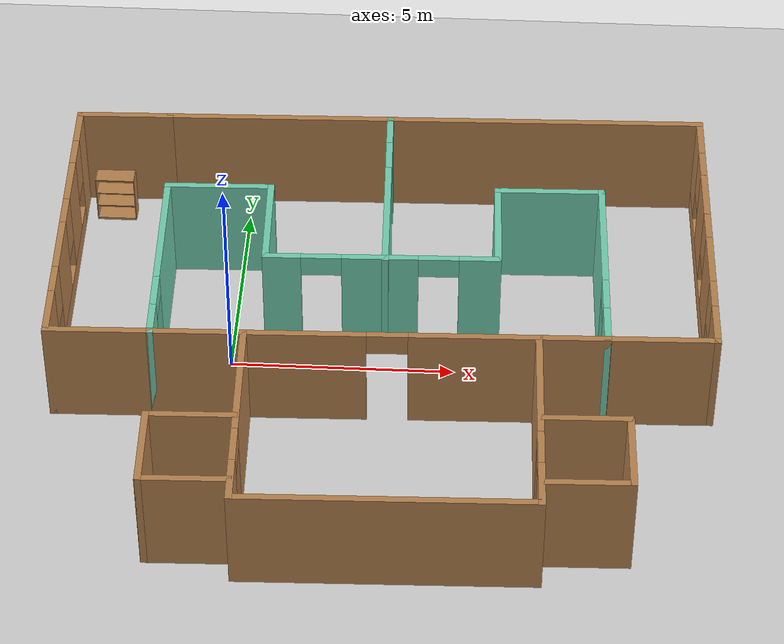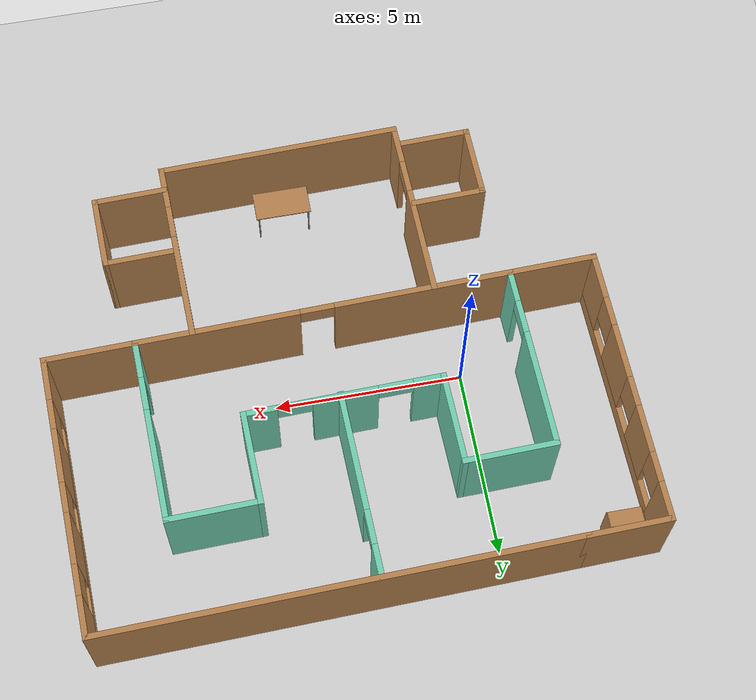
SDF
<sdf version="1.7">
 <world name="default">
  <light name="sun" type="directional">
   <pose>0 0 10 0 -0 0</pose>
   <diffuse>0.8 0.8 0.8 1</diffuse>
   <specular>0.2 0.2 0.2 1</specular>
   <attenuation>
    <range>1000</range>
    <constant>0.9</constant>
    <linear>0.01</linear>
    <quadratic>0.001</quadratic>
   </attenuation>
   <direction>-0.5 0.1 -0.9</direction>
   <spot><inner_angle>0</inner_angle><outer_angle>0</outer_angle><falloff>0</falloff></spot>
  </light>
  <model name="ground_plane">
   <static>1</static>
   <link name="link">
    <collision name="collision">
     <geometry><plane><normal>0 0 1</normal><size>100 100</size></plane></geometry>
     <surface>
      <contact><collide_bitmask>65535</collide_bitmask></contact>
      <friction><ode><mu>100</mu><mu2>50</mu2></ode></friction>
     </surface>
    </collision>
    <visual name="visual">
     <cast_shadows>0</cast_shadows>
     <geometry><plane><normal>0 0 1</normal><size>100 100</size></plane></geometry>
     <material>
      <script><uri>file://media/materials/scripts/gazebo.material</uri><name>Gazebo/Grey</name></script>
     </material>
    </visual>
   </link>
  </model>
  <gravity>0 0 -9.8</gravity>
  <magnetic_field>6e-06 2.3e-05 -4.2e-05</magnetic_field>
  <atmosphere type="adiabatic"/>
  <physics type="ode">
   <max_step_size>0.001</max_step_size>
   <real_time_factor>1</real_time_factor>
   <real_time_update_rate>1000</real_time_update_rate>
  </physics>
  <scene><ambient>0.4 0.4 0.4 1</ambient><background>0.7 0.7 0.7 1</background><shadows>1</shadows></scene>
  <spherical_coordinates>
   <surface_model>EARTH_WGS84</surface_model>
   <latitude_deg>0</latitude_deg>
   <longitude_deg>0</longitude_deg>
   <elevation>0</elevation>
   <heading_deg>0</heading_deg>
  </spherical_coordinates>
  <model name="building2">
   <pose>3.41287 -0.264081 0 0 0 -3.11426</pose>
   <link name="Wall_1">
    <pose>-4.875 -1.17504 0 0 -0 1.5708</pose>
    <visual name="Wall_1_Visual_0">
     <pose>-0.975349 0 1.25 0 -0 0</pose>
     <geometry><box><size>3.0493 0.15 2.5</size></box></geometry>
     <material>
      <script><uri>file://media/materials/scripts/gazebo.material</uri><name>Gazebo/Grey</name></script>
      <ambient>0.435294 0.796078 0.67451 1</ambient>
     </material>
     <meta><layer>0</layer></meta>
    </visual>
    <collision name="Wall_1_Collision_0">
     <geometry><box><size>3.0493 0.15 2.5</size></box></geometry>
     <pose>-0.975349 0 1.25 0 -0 0</pose>
    </collision>
    <visual name="Wall_1_Visual_1">
     <pose>1.97465 0 1.25 0 -0 0</pose>
     <geometry><box><size>1.0507 0.15 2.5</size></box></geometry>
     <material>
      <script><uri>file://media/materials/scripts/gazebo.material</uri><name>Gazebo/Grey</name></script>
      <ambient>0.435294 0.796078 0.67451 1</ambient>
     </material>
     <meta><layer>0</layer></meta>
    </visual>
    <collision name="Wall_1_Collision_1">
     <geometry><box><size>1.0507 0.15 2.5</size></box></geometry>
     <pose>1.97465 0 1.25 0 -0 0</pose>
    </collision>
    <visual name="Wall_1_Visual_2">
     <pose>0.999301 0 2.25 0 -0 0</pose>
     <geometry><box><size>0.9 0.15 0.5</size></box></geometry>
     <material>
      <script><uri>file://media/materials/scripts/gazebo.material</uri><name>Gazebo/Grey</name></script>
      <ambient>0.435294 0.796078 0.67451 1</ambient>
     </material>
     <meta><layer>0</layer></meta>
    </visual>
    <collision name="Wall_1_Collision_2">
     <geometry><box><size>0.9 0.15 0.5</size></box></geometry>
     <pose>0.999301 0 2.25 0 -0 0</pose>
    </collision>
   </link>
   <link name="Wall_10">
    <pose>0.05 -1.25004 0 0 -0 0</pose>
    <visual name="Wall_10_Visual_0">
     <pose>-2.18114 0 1.25 0 -0 0</pose>
     <geometry><box><size>0.937717 0.15 2.5</size></box></geometry>
     <material>
      <script><uri>file://media/materials/scripts/gazebo.material</uri><name>Gazebo/Grey</name></script>
      <ambient>0.435294 0.796078 0.67451 1</ambient>
     </material>
     <meta><layer>0</layer></meta>
    </visual>
    <collision name="Wall_10_Collision_0">
     <geometry><box><size>0.937717 0.15 2.5</size></box></geometry>
     <pose>-2.18114 0 1.25 0 -0 0</pose>
    </collision>
    <visual name="Wall_10_Visual_1">
     <pose>0.039331 0 1.25 0 -0 0</pose>
     <geometry><box><size>1.70323 0.15 2.5</size></box></geometry>
     <material>
      <script><uri>file://media/materials/scripts/gazebo.material</uri><name>Gazebo/Grey</name></script>
      <ambient>0.435294 0.796078 0.67451 1</ambient>
     </material>
     <meta><layer>0</layer></meta>
    </visual>
    <collision name="Wall_10_Collision_1">
     <geometry><box><size>1.70323 0.15 2.5</size></box></geometry>
     <pose>0.039331 0 1.25 0 -0 0</pose>
    </collision>
    <visual name="Wall_10_Visual_2">
     <pose>2.22047 0 1.25 0 -0 0</pose>
     <geometry><box><size>0.859054 0.15 2.5</size></box></geometry>
     <material>
      <script><uri>file://media/materials/scripts/gazebo.material</uri><name>Gazebo/Grey</name></script>
      <ambient>0.435294 0.796078 0.67451 1</ambient>
     </material>
     <meta><layer>0</layer></meta>
    </visual>
    <collision name="Wall_10_Collision_2">
     <geometry><box><size>0.859054 0.15 2.5</size></box></geometry>
     <pose>2.22047 0 1.25 0 -0 0</pose>
    </collision>
    <visual name="Wall_10_Visual_3">
     <pose>-1.26228 0 2.25 0 -0 0</pose>
     <geometry><box><size>0.9 0.15 0.5</size></box></geometry>
     <material>
      <script><uri>file://media/materials/scripts/gazebo.material</uri><name>Gazebo/Grey</name></script>
      <ambient>0.435294 0.796078 0.67451 1</ambient>
     </material>
     <meta><layer>0</layer></meta>
    </visual>
    <collision name="Wall_10_Collision_3">
     <geometry><box><size>0.9 0.15 0.5</size></box></geometry>
     <pose>-1.26228 0 2.25 0 -0 0</pose>
    </collision>
    <visual name="Wall_10_Visual_4">
     <pose>1.34095 0 2.25 0 -0 0</pose>
     <geometry><box><size>0.9 0.15 0.5</size></box></geometry>
     <material>
      <script><uri>file://media/materials/scripts/gazebo.material</uri><name>Gazebo/Grey</name></script>
      <ambient>0.435294 0.796078 0.67451 1</ambient>
     </material>
     <meta><layer>0</layer></meta>
    </visual>
    <collision name="Wall_10_Collision_4">
     <geometry><box><size>0.9 0.15 0.5</size></box></geometry>
     <pose>1.34095 0 2.25 0 -0 0</pose>
    </collision>
   </link>
   <link name="Wall_12">
    <collision name="Wall_12_Collision">
     <geometry><box><size>2.5 0.15 2.5</size></box></geometry>
     <pose>0 0 1.25 0 -0 0</pose>
    </collision>
    <visual name="Wall_12_Visual">
     <pose>0 0 1.25 0 -0 0</pose>
     <geometry><box><size>2.5 0.15 2.5</size></box></geometry>
     <material>
      <script><uri>file://media/materials/scripts/gazebo.material</uri><name>Gazebo/Wood</name></script>
      <ambient>1 1 1 1</ambient>
     </material>
     <meta><layer>0</layer></meta>
    </visual>
    <pose>-6.05 1.24996 0 0 -0 3.14159</pose>
   </link>
   <link name="Wall_13">
    <pose>-7.225 -2.42504 0 0 -0 -1.5708</pose>
    <visual name="Wall_13_Visual_0">
     <pose>-3.1596 0 1.25 0 -0 0</pose>
     <geometry><box><size>1.18081 0.15 2.5</size></box></geometry>
     <material>
      <script><uri>file://media/materials/scripts/gazebo.material</uri><name>Gazebo/Wood</name></script>
      <ambient>1 1 1 1</ambient>
     </material>
     <meta><layer>0</layer></meta>
    </visual>
    <collision name="Wall_13_Collision_0">
     <geometry><box><size>1.18081 0.15 2.5</size></box></geometry>
     <pose>-3.1596 0 1.25 0 -0 0</pose>
    </collision>
    <visual name="Wall_13_Visual_1">
     <pose>0.590402 0 0.25 0 -0 0</pose>
     <geometry><box><size>6.31919 0.15 0.5</size></box></geometry>
     <material>
      <script><uri>file://media/materials/scripts/gazebo.material</uri><name>Gazebo/Wood</name></script>
      <ambient>1 1 1 1</ambient>
     </material>
     <meta><layer>0</layer></meta>
    </visual>
    <collision name="Wall_13_Collision_1">
     <geometry><box><size>6.31919 0.15 0.5</size></box></geometry>
     <pose>0.590402 0 0.25 0 -0 0</pose>
    </collision>
    <visual name="Wall_13_Visual_2">
     <pose>-1.04347 0 1.5 0 -0 0</pose>
     <geometry><box><size>1.45144 0.15 2</size></box></geometry>
     <material>
      <script><uri>file://media/materials/scripts/gazebo.material</uri><name>Gazebo/Wood</name></script>
      <ambient>1 1 1 1</ambient>
     </material>
     <meta><layer>0</layer></meta>
    </visual>
    <collision name="Wall_13_Collision_2">
     <geometry><box><size>1.45144 0.15 2</size></box></geometry>
     <pose>-1.04347 0 1.5 0 -0 0</pose>
    </collision>
    <visual name="Wall_13_Visual_3">
     <pose>1.1552 0 1.5 0 -0 0</pose>
     <geometry><box><size>1.3459 0.15 2</size></box></geometry>
     <material>
      <script><uri>file://media/materials/scripts/gazebo.material</uri><name>Gazebo/Wood</name></script>
      <ambient>1 1 1 1</ambient>
     </material>
     <meta><layer>0</layer></meta>
    </visual>
    <collision name="Wall_13_Collision_3">
     <geometry><box><size>1.3459 0.15 2</size></box></geometry>
     <pose>1.1552 0 1.5 0 -0 0</pose>
    </collision>
    <visual name="Wall_13_Visual_4">
     <pose>3.18907 0 1.5 0 -0 0</pose>
     <geometry><box><size>1.12185 0.15 2</size></box></geometry>
     <material>
      <script><uri>file://media/materials/scripts/gazebo.material</uri><name>Gazebo/Wood</name></script>
      <ambient>1 1 1 1</ambient>
     </material>
     <meta><layer>0</layer></meta>
    </visual>
    <collision name="Wall_13_Collision_4">
     <geometry><box><size>1.12185 0.15 2</size></box></geometry>
     <pose>3.18907 0 1.5 0 -0 0</pose>
    </collision>
    <visual name="Wall_13_Visual_5">
     <pose>-2.1692 0 1.9 0 -0 0</pose>
     <geometry><box><size>0.8 0.15 1.2</size></box></geometry>
     <material>
      <script><uri>file://media/materials/scripts/gazebo.material</uri><name>Gazebo/Wood</name></script>
      <ambient>1 1 1 1</ambient>
     </material>
     <meta><layer>0</layer></meta>
    </visual>
    <collision name="Wall_13_Collision_5">
     <geometry><box><size>0.8 0.15 1.2</size></box></geometry>
     <pose>-2.1692 0 1.9 0 -0 0</pose>
    </collision>
    <visual name="Wall_13_Visual_6">
     <pose>0.082246 0 1.9 0 -0 0</pose>
     <geometry><box><size>0.8 0.15 1.2</size></box></geometry>
     <material>
      <script><uri>file://media/materials/scripts/gazebo.material</uri><name>Gazebo/Wood</name></script>
      <ambient>1 1 1 1</ambient>
     </material>
     <meta><layer>0</layer></meta>
    </visual>
    <collision name="Wall_13_Collision_6">
     <geometry><box><size>0.8 0.15 1.2</size></box></geometry>
     <pose>0.082246 0 1.9 0 -0 0</pose>
    </collision>
    <visual name="Wall_13_Visual_7">
     <pose>2.22815 0 1.9 0 -0 0</pose>
     <geometry><box><size>0.8 0.15 1.2</size></box></geometry>
     <material>
      <script><uri>file://media/materials/scripts/gazebo.material</uri><name>Gazebo/Wood</name></script>
      <ambient>1 1 1 1</ambient>
     </material>
     <meta><layer>0</layer></meta>
    </visual>
    <collision name="Wall_13_Collision_7">
     <geometry><box><size>0.8 0.15 1.2</size></box></geometry>
     <pose>2.22815 0 1.9 0 -0 0</pose>
    </collision>
   </link>
   <link name="Wall_14">
    <collision name="Wall_14_Collision">
     <geometry><box><size>12.5 0.15 2.5</size></box></geometry>
     <pose>0 0 1.25 0 -0 0</pose>
    </collision>
    <visual name="Wall_14_Visual">
     <pose>0 0 1.25 0 -0 0</pose>
     <geometry><box><size>12.5 0.15 2.5</size></box></geometry>
     <material>
      <script><uri>file://media/materials/scripts/gazebo.material</uri><name>Gazebo/Wood</name></script>
      <ambient>1 1 1 1</ambient>
     </material>
     <meta><layer>0</layer></meta>
    </visual>
    <pose>-1.05 -6.10004 0 0 -0 0</pose>
   </link>
   <link name="Wall_18">
    <pose>-0.026306 -3.64586 0 0 -0 -1.5708</pose>
    <visual name="Wall_18_Visual_0">
     <pose>-0.900973 0 1.25 0 -0 0</pose>
     <geometry><box><size>3.19805 0.15 2.5</size></box></geometry>
     <material>
      <script><uri>file://media/materials/scripts/gazebo.material</uri><name>Gazebo/Grey</name></script>
      <ambient>0.435294 0.796078 0.67451 1</ambient>
     </material>
     <meta><layer>0</layer></meta>
    </visual>
    <collision name="Wall_18_Collision_0">
     <geometry><box><size>3.19805 0.15 2.5</size></box></geometry>
     <pose>-0.900973 0 1.25 0 -0 0</pose>
    </collision>
    <visual name="Wall_18_Visual_1">
     <pose>2.04903 0 1.25 0 -0 0</pose>
     <geometry><box><size>0.901947 0.15 2.5</size></box></geometry>
     <material>
      <script><uri>file://media/materials/scripts/gazebo.material</uri><name>Gazebo/Grey</name></script>
      <ambient>0.435294 0.796078 0.67451 1</ambient>
     </material>
     <meta><layer>0</layer></meta>
    </visual>
    <collision name="Wall_18_Collision_1">
     <geometry><box><size>0.901947 0.15 2.5</size></box></geometry>
     <pose>2.04903 0 1.25 0 -0 0</pose>
    </collision>
    <visual name="Wall_18_Visual_2">
     <pose>1.14805 0 2.25 0 -0 0</pose>
     <geometry><box><size>0.9 0.15 0.5</size></box></geometry>
     <material>
      <script><uri>file://media/materials/scripts/gazebo.material</uri><name>Gazebo/Grey</name></script>
      <ambient>0.435294 0.796078 0.67451 1</ambient>
     </material>
     <meta><layer>0</layer></meta>
    </visual>
    <collision name="Wall_18_Collision_2">
     <geometry><box><size>0.9 0.15 0.5</size></box></geometry>
     <pose>1.14805 0 2.25 0 -0 0</pose>
    </collision>
   </link>
   <link name="Wall_21">
    <collision name="Wall_21_Collision">
     <geometry><box><size>2.25 0.15 2.5</size></box></geometry>
     <pose>0 0 1.25 0 -0 0</pose>
    </collision>
    <visual name="Wall_21_Visual">
     <pose>0 0 1.25 0 -0 0</pose>
     <geometry><box><size>2.25 0.15 2.5</size></box></geometry>
     <material>
      <script><uri>file://media/materials/scripts/gazebo.material</uri><name>Gazebo/Wood</name></script>
      <ambient>1 1 1 1</ambient>
     </material>
     <meta><layer>0</layer></meta>
    </visual>
    <pose>6.175 -6.10004 0 0 -0 0</pose>
   </link>
   <link name="Wall_22">
    <pose>7.225 -2.42504 0 0 -0 1.5708</pose>
    <visual name="Wall_22_Visual_0">
     <pose>-3.22425 0 1.25 0 -0 0</pose>
     <geometry><box><size>1.05149 0.15 2.5</size></box></geometry>
     <material>
      <script><uri>file://media/materials/scripts/gazebo.material</uri><name>Gazebo/Wood</name></script>
      <ambient>1 1 1 1</ambient>
     </material>
     <meta><layer>0</layer></meta>
    </visual>
    <collision name="Wall_22_Collision_0">
     <geometry><box><size>1.05149 0.15 2.5</size></box></geometry>
     <pose>-3.22425 0 1.25 0 -0 0</pose>
    </collision>
    <visual name="Wall_22_Visual_1">
     <pose>0.525746 0 0.25 0 -0 0</pose>
     <geometry><box><size>6.44851 0.15 0.5</size></box></geometry>
     <material>
      <script><uri>file://media/materials/scripts/gazebo.material</uri><name>Gazebo/Wood</name></script>
      <ambient>1 1 1 1</ambient>
     </material>
     <meta><layer>0</layer></meta>
    </visual>
    <collision name="Wall_22_Collision_1">
     <geometry><box><size>6.44851 0.15 0.5</size></box></geometry>
     <pose>0.525746 0 0.25 0 -0 0</pose>
    </collision>
    <visual name="Wall_22_Visual_2">
     <pose>-1.26073 0 1.5 0 -0 0</pose>
     <geometry><box><size>1.27555 0.15 2</size></box></geometry>
     <material>
      <script><uri>file://media/materials/scripts/gazebo.material</uri><name>Gazebo/Wood</name></script>
      <ambient>1 1 1 1</ambient>
     </material>
     <meta><layer>0</layer></meta>
    </visual>
    <collision name="Wall_22_Collision_2">
     <geometry><box><size>1.27555 0.15 2</size></box></geometry>
     <pose>-1.26073 0 1.5 0 -0 0</pose>
    </collision>
    <visual name="Wall_22_Visual_3">
     <pose>0.920349 0 1.5 0 -0 0</pose>
     <geometry><box><size>1.48662 0.15 2</size></box></geometry>
     <material>
      <script><uri>file://media/materials/scripts/gazebo.material</uri><name>Gazebo/Wood</name></script>
      <ambient>1 1 1 1</ambient>
     </material>
     <meta><layer>0</layer></meta>
    </visual>
    <collision name="Wall_22_Collision_3">
     <geometry><box><size>1.48662 0.15 2</size></box></geometry>
     <pose>0.920349 0 1.5 0 -0 0</pose>
    </collision>
    <visual name="Wall_22_Visual_4">
     <pose>3.10683 0 1.5 0 -0 0</pose>
     <geometry><box><size>1.28634 0.15 2</size></box></geometry>
     <material>
      <script><uri>file://media/materials/scripts/gazebo.material</uri><name>Gazebo/Wood</name></script>
      <ambient>1 1 1 1</ambient>
     </material>
     <meta><layer>0</layer></meta>
    </visual>
    <collision name="Wall_22_Collision_4">
     <geometry><box><size>1.28634 0.15 2</size></box></geometry>
     <pose>3.10683 0 1.5 0 -0 0</pose>
    </collision>
    <visual name="Wall_22_Visual_5">
     <pose>-2.29851 0 1.9 0 -0 0</pose>
     <geometry><box><size>0.8 0.15 1.2</size></box></geometry>
     <material>
      <script><uri>file://media/materials/scripts/gazebo.material</uri><name>Gazebo/Wood</name></script>
      <ambient>1 1 1 1</ambient>
     </material>
     <meta><layer>0</layer></meta>
    </visual>
    <collision name="Wall_22_Collision_5">
     <geometry><box><size>0.8 0.15 1.2</size></box></geometry>
     <pose>-2.29851 0 1.9 0 -0 0</pose>
    </collision>
    <visual name="Wall_22_Visual_6">
     <pose>-0.222961 0 1.9 0 -0 0</pose>
     <geometry><box><size>0.8 0.15 1.2</size></box></geometry>
     <material>
      <script><uri>file://media/materials/scripts/gazebo.material</uri><name>Gazebo/Wood</name></script>
      <ambient>1 1 1 1</ambient>
     </material>
     <meta><layer>0</layer></meta>
    </visual>
    <collision name="Wall_22_Collision_6">
     <geometry><box><size>0.8 0.15 1.2</size></box></geometry>
     <pose>-0.222961 0 1.9 0 -0 0</pose>
    </collision>
    <visual name="Wall_22_Visual_7">
     <pose>2.06366 0 1.9 0 -0 0</pose>
     <geometry><box><size>0.8 0.15 1.2</size></box></geometry>
     <material>
      <script><uri>file://media/materials/scripts/gazebo.material</uri><name>Gazebo/Wood</name></script>
      <ambient>1 1 1 1</ambient>
     </material>
     <meta><layer>0</layer></meta>
    </visual>
    <collision name="Wall_22_Collision_7">
     <geometry><box><size>0.8 0.15 1.2</size></box></geometry>
     <pose>2.06366 0 1.9 0 -0 0</pose>
    </collision>
   </link>
   <link name="Wall_23">
    <collision name="Wall_23_Collision">
     <geometry><box><size>2.4 0.15 2.5</size></box></geometry>
     <pose>0 0 1.25 0 -0 0</pose>
    </collision>
    <visual name="Wall_23_Visual">
     <pose>0 0 1.25 0 -0 0</pose>
     <geometry><box><size>2.4 0.15 2.5</size></box></geometry>
     <material>
      <script><uri>file://media/materials/scripts/gazebo.material</uri><name>Gazebo/Wood</name></script>
      <ambient>1 1 1 1</ambient>
     </material>
     <meta><layer>0</layer></meta>
    </visual>
    <pose>6.1 1.24996 0 0 -0 -3.14159</pose>
   </link>
   <link name="Wall_26">
    <pose>-3.3958 3.67504 0 0 -0 1.5708</pose>
    <visual name="Wall_26_Visual_0">
     <pose>-1.04628 0 1.25 0 -0 0</pose>
     <geometry><box><size>2.90745 0.15 2.5</size></box></geometry>
     <material>
      <script><uri>file://media/materials/scripts/gazebo.material</uri><name>Gazebo/Wood</name></script>
      <ambient>1 1 1 1</ambient>
     </material>
     <meta><layer>0</layer></meta>
    </visual>
    <collision name="Wall_26_Collision_0">
     <geometry><box><size>2.90745 0.15 2.5</size></box></geometry>
     <pose>-1.04628 0 1.25 0 -0 0</pose>
    </collision>
    <visual name="Wall_26_Visual_1">
     <pose>1.90372 0 1.25 0 -0 0</pose>
     <geometry><box><size>1.19255 0.15 2.5</size></box></geometry>
     <material>
      <script><uri>file://media/materials/scripts/gazebo.material</uri><name>Gazebo/Wood</name></script>
      <ambient>1 1 1 1</ambient>
     </material>
     <meta><layer>0</layer></meta>
    </visual>
    <collision name="Wall_26_Collision_1">
     <geometry><box><size>1.19255 0.15 2.5</size></box></geometry>
     <pose>1.90372 0 1.25 0 -0 0</pose>
    </collision>
    <visual name="Wall_26_Visual_2">
     <pose>0.857448 0 2.25 0 -0 0</pose>
     <geometry><box><size>0.9 0.15 0.5</size></box></geometry>
     <material>
      <script><uri>file://media/materials/scripts/gazebo.material</uri><name>Gazebo/Wood</name></script>
      <ambient>1 1 1 1</ambient>
     </material>
     <meta><layer>0</layer></meta>
    </visual>
    <collision name="Wall_26_Collision_2">
     <geometry><box><size>0.9 0.15 0.5</size></box></geometry>
     <pose>0.857448 0 2.25 0 -0 0</pose>
    </collision>
   </link>
   <link name="Wall_27">
    <collision name="Wall_27_Collision">
     <geometry><box><size>6.5 0.15 2.5</size></box></geometry>
     <pose>0 0 1.25 0 -0 0</pose>
    </collision>
    <visual name="Wall_27_Visual">
     <pose>0 0 1.25 0 -0 0</pose>
     <geometry><box><size>6.5 0.15 2.5</size></box></geometry>
     <material>
      <script><uri>file://media/materials/scripts/gazebo.material</uri><name>Gazebo/Wood</name></script>
      <ambient>1 1 1 1</ambient>
     </material>
     <meta><layer>0</layer></meta>
    </visual>
    <pose>-0.220795 6.10004 0 0 -0 0</pose>
   </link>
   <link name="Wall_28">
    <pose>2.9542 3.67504 0 0 -0 -1.5708</pose>
    <visual name="Wall_28_Visual_0">
     <pose>-1.94362 0 1.25 0 -0 0</pose>
     <geometry><box><size>1.11275 0.15 2.5</size></box></geometry>
     <material>
      <script><uri>file://media/materials/scripts/gazebo.material</uri><name>Gazebo/Wood</name></script>
      <ambient>1 1 1 1</ambient>
     </material>
     <meta><layer>0</layer></meta>
    </visual>
    <collision name="Wall_28_Collision_0">
     <geometry><box><size>1.11275 0.15 2.5</size></box></geometry>
     <pose>-1.94362 0 1.25 0 -0 0</pose>
    </collision>
    <visual name="Wall_28_Visual_1">
     <pose>1.00638 0 1.25 0 -0 0</pose>
     <geometry><box><size>2.98725 0.15 2.5</size></box></geometry>
     <material>
      <script><uri>file://media/materials/scripts/gazebo.material</uri><name>Gazebo/Wood</name></script>
      <ambient>1 1 1 1</ambient>
     </material>
     <meta><layer>0</layer></meta>
    </visual>
    <collision name="Wall_28_Collision_1">
     <geometry><box><size>2.98725 0.15 2.5</size></box></geometry>
     <pose>1.00638 0 1.25 0 -0 0</pose>
    </collision>
    <visual name="Wall_28_Visual_2">
     <pose>-0.937249 0 2.25 0 -0 0</pose>
     <geometry><box><size>0.9 0.15 0.5</size></box></geometry>
     <material>
      <script><uri>file://media/materials/scripts/gazebo.material</uri><name>Gazebo/Wood</name></script>
      <ambient>1 1 1 1</ambient>
     </material>
     <meta><layer>0</layer></meta>
    </visual>
    <collision name="Wall_28_Collision_2">
     <geometry><box><size>0.9 0.15 0.5</size></box></geometry>
     <pose>-0.937249 0 2.25 0 -0 0</pose>
    </collision>
   </link>
   <link name="Wall_3">
    <pose>0.05 1.24996 0 0 -0 0</pose>
    <visual name="Wall_3_Visual_0">
     <pose>-2.81701 0 1.25 0 -0 0</pose>
     <geometry><box><size>4.36598 0.15 2.5</size></box></geometry>
     <material>
      <script><uri>file://media/materials/scripts/gazebo.material</uri><name>Gazebo/Wood</name></script>
      <ambient>1 1 1 1</ambient>
     </material>
     <meta><layer>0</layer></meta>
    </visual>
    <collision name="Wall_3_Collision_0">
     <geometry><box><size>4.36598 0.15 2.5</size></box></geometry>
     <pose>-2.81701 0 1.25 0 -0 0</pose>
    </collision>
    <visual name="Wall_3_Visual_1">
     <pose>2.63299 0 1.25 0 -0 0</pose>
     <geometry><box><size>4.73402 0.15 2.5</size></box></geometry>
     <material>
      <script><uri>file://media/materials/scripts/gazebo.material</uri><name>Gazebo/Wood</name></script>
      <ambient>1 1 1 1</ambient>
     </material>
     <meta><layer>0</layer></meta>
    </visual>
    <collision name="Wall_3_Collision_1">
     <geometry><box><size>4.73402 0.15 2.5</size></box></geometry>
     <pose>2.63299 0 1.25 0 -0 0</pose>
    </collision>
    <visual name="Wall_3_Visual_2">
     <pose>-0.184023 0 2.25 0 -0 0</pose>
     <geometry><box><size>0.9 0.15 0.5</size></box></geometry>
     <material>
      <script><uri>file://media/materials/scripts/gazebo.material</uri><name>Gazebo/Wood</name></script>
      <ambient>1 1 1 1</ambient>
     </material>
     <meta><layer>0</layer></meta>
    </visual>
    <collision name="Wall_3_Collision_2">
     <geometry><box><size>0.9 0.15 0.5</size></box></geometry>
     <pose>-0.184023 0 2.25 0 -0 0</pose>
    </collision>
   </link>
   <link name="Wall_32">
    <collision name="Wall_32_Collision">
     <geometry><box><size>2 0.15 2.5</size></box></geometry>
     <pose>0 0 1.25 0 -0 0</pose>
    </collision>
    <visual name="Wall_32_Visual">
     <pose>0 0 1.25 0 -0 0</pose>
     <geometry><box><size>2 0.15 2.5</size></box></geometry>
     <material>
      <script><uri>file://media/materials/scripts/gazebo.material</uri><name>Gazebo/Wood</name></script>
      <ambient>1 1 1 1</ambient>
     </material>
     <meta><layer>0</layer></meta>
    </visual>
    <pose>-4.34814 5.51854 0 0 -0 3.14159</pose>
   </link>
   <link name="Wall_33">
    <collision name="Wall_33_Collision">
     <geometry><box><size>2 0.15 2.5</size></box></geometry>
     <pose>0 0 1.25 0 -0 0</pose>
    </collision>
    <visual name="Wall_33_Visual">
     <pose>0 0 1.25 0 -0 0</pose>
     <geometry><box><size>2 0.15 2.5</size></box></geometry>
     <material>
      <script><uri>file://media/materials/scripts/gazebo.material</uri><name>Gazebo/Wood</name></script>
      <ambient>1 1 1 1</ambient>
     </material>
     <meta><layer>0</layer></meta>
    </visual>
    <pose>-5.27314 4.59354 0 0 -0 -1.5708</pose>
   </link>
   <link name="Wall_34">
    <collision name="Wall_34_Collision">
     <geometry><box><size>2 0.15 2.5</size></box></geometry>
     <pose>0 0 1.25 0 -0 0</pose>
    </collision>
    <visual name="Wall_34_Visual">
     <pose>0 0 1.25 0 -0 0</pose>
     <geometry><box><size>2 0.15 2.5</size></box></geometry>
     <material>
      <script><uri>file://media/materials/scripts/gazebo.material</uri><name>Gazebo/Wood</name></script>
      <ambient>1 1 1 1</ambient>
     </material>
     <meta><layer>0</layer></meta>
    </visual>
    <pose>-4.34814 3.66854 0 0 -0 0</pose>
   </link>
   <link name="Wall_4">
    <pose>4.975 -1.17504 0 0 -0 -1.5708</pose>
    <visual name="Wall_4_Visual_0">
     <pose>-2.04115 0 1.25 0 -0 0</pose>
     <geometry><box><size>0.917698 0.15 2.5</size></box></geometry>
     <material>
      <script><uri>file://media/materials/scripts/gazebo.material</uri><name>Gazebo/Grey</name></script>
      <ambient>0.435294 0.796078 0.67451 1</ambient>
     </material>
     <meta><layer>0</layer></meta>
    </visual>
    <collision name="Wall_4_Collision_0">
     <geometry><box><size>0.917698 0.15 2.5</size></box></geometry>
     <pose>-2.04115 0 1.25 0 -0 0</pose>
    </collision>
    <visual name="Wall_4_Visual_1">
     <pose>0.908849 0 1.25 0 -0 0</pose>
     <geometry><box><size>3.1823 0.15 2.5</size></box></geometry>
     <material>
      <script><uri>file://media/materials/scripts/gazebo.material</uri><name>Gazebo/Grey</name></script>
      <ambient>0.435294 0.796078 0.67451 1</ambient>
     </material>
     <meta><layer>0</layer></meta>
    </visual>
    <collision name="Wall_4_Collision_1">
     <geometry><box><size>3.1823 0.15 2.5</size></box></geometry>
     <pose>0.908849 0 1.25 0 -0 0</pose>
    </collision>
    <visual name="Wall_4_Visual_2">
     <pose>-1.1323 0 2.25 0 -0 0</pose>
     <geometry><box><size>0.9 0.15 0.5</size></box></geometry>
     <material>
      <script><uri>file://media/materials/scripts/gazebo.material</uri><name>Gazebo/Grey</name></script>
      <ambient>0.435294 0.796078 0.67451 1</ambient>
     </material>
     <meta><layer>0</layer></meta>
    </visual>
    <collision name="Wall_4_Collision_2">
     <geometry><box><size>0.9 0.15 0.5</size></box></geometry>
     <pose>-1.1323 0 2.25 0 -0 0</pose>
    </collision>
   </link>
   <link name="Wall_44">
    <collision name="Wall_44_Collision">
     <geometry><box><size>2 0.15 2.5</size></box></geometry>
     <pose>0 0 1.25 0 -0 0</pose>
    </collision>
    <visual name="Wall_44_Visual">
     <pose>0 0 1.25 0 -0 0</pose>
     <geometry><box><size>2 0.15 2.5</size></box></geometry>
     <material>
      <script><uri>file://media/materials/scripts/gazebo.material</uri><name>Gazebo/Wood</name></script>
      <ambient>1 1 1 1</ambient>
     </material>
     <meta><layer>0</layer></meta>
    </visual>
    <pose>3.91809 5.61911 0 0 -0 0</pose>
   </link>
   <link name="Wall_45">
    <collision name="Wall_45_Collision">
     <geometry><box><size>2 0.15 2.5</size></box></geometry>
     <pose>0 0 1.25 0 -0 0</pose>
    </collision>
    <visual name="Wall_45_Visual">
     <pose>0 0 1.25 0 -0 0</pose>
     <geometry><box><size>2 0.15 2.5</size></box></geometry>
     <material>
      <script><uri>file://media/materials/scripts/gazebo.material</uri><name>Gazebo/Wood</name></script>
      <ambient>1 1 1 1</ambient>
     </material>
     <meta><layer>0</layer></meta>
    </visual>
    <pose>4.84309 4.69411 0 0 -0 -1.5708</pose>
   </link>
   <link name="Wall_46">
    <collision name="Wall_46_Collision">
     <geometry><box><size>2 0.15 2.5</size></box></geometry>
     <pose>0 0 1.25 0 -0 0</pose>
    </collision>
    <visual name="Wall_46_Visual">
     <pose>0 0 1.25 0 -0 0</pose>
     <geometry><box><size>2 0.15 2.5</size></box></geometry>
     <material>
      <script><uri>file://media/materials/scripts/gazebo.material</uri><name>Gazebo/Wood</name></script>
      <ambient>1 1 1 1</ambient>
     </material>
     <meta><layer>0</layer></meta>
    </visual>
    <pose>3.91809 3.76911 0 0 -0 3.14159</pose>
   </link>
   <link name="Wall_5">
    <collision name="Wall_5_Collision">
     <geometry><box><size>2.5 0.15 2.5</size></box></geometry>
     <pose>0 0 1.25 0 -0 0</pose>
    </collision>
    <visual name="Wall_5_Visual">
     <pose>0 0 1.25 0 -0 0</pose>
     <geometry><box><size>2.5 0.15 2.5</size></box></geometry>
     <material>
      <script><uri>file://media/materials/scripts/gazebo.material</uri><name>Gazebo/Grey</name></script>
      <ambient>0.435294 0.796078 0.67451 1</ambient>
     </material>
     <meta><layer>0</layer></meta>
    </visual>
    <pose>3.8 -3.60004 0 0 -0 3.14159</pose>
   </link>
   <link name="Wall_6">
    <collision name="Wall_6_Collision">
     <geometry><box><size>2.5 0.15 2.5</size></box></geometry>
     <pose>0 0 1.25 0 -0 0</pose>
    </collision>
    <visual name="Wall_6_Visual">
     <pose>0 0 1.25 0 -0 0</pose>
     <geometry><box><size>2.5 0.15 2.5</size></box></geometry>
     <material>
      <script><uri>file://media/materials/scripts/gazebo.material</uri><name>Gazebo/Grey</name></script>
      <ambient>0.435294 0.796078 0.67451 1</ambient>
     </material>
     <meta><layer>0</layer></meta>
    </visual>
    <pose>2.625 -2.42504 0 0 -0 1.5708</pose>
   </link>
   <link name="Wall_8">
    <collision name="Wall_8_Collision">
     <geometry><box><size>2.5 0.15 2.5</size></box></geometry>
     <pose>0 0 1.25 0 -0 0</pose>
    </collision>
    <visual name="Wall_8_Visual">
     <pose>0 0 1.25 0 -0 0</pose>
     <geometry><box><size>2.5 0.15 2.5</size></box></geometry>
     <material>
      <script><uri>file://media/materials/scripts/gazebo.material</uri><name>Gazebo/Grey</name></script>
      <ambient>0.435294 0.796078 0.67451 1</ambient>
     </material>
     <meta><layer>0</layer></meta>
    </visual>
    <pose>-3.7 -3.60004 0 0 -0 0</pose>
   </link>
   <link name="Wall_9">
    <collision name="Wall_9_Collision">
     <geometry><box><size>2.5 0.15 2.5</size></box></geometry>
     <pose>0 0 1.25 0 -0 0</pose>
    </collision>
    <visual name="Wall_9_Visual">
     <pose>0 0 1.25 0 -0 0</pose>
     <geometry><box><size>2.5 0.15 2.5</size></box></geometry>
     <material>
      <script><uri>file://media/materials/scripts/gazebo.material</uri><name>Gazebo/Grey</name></script>
      <ambient>0.435294 0.796078 0.67451 1</ambient>
     </material>
     <meta><layer>0</layer></meta>
    </visual>
    <pose>-2.525 -2.42504 0 0 -0 1.5708</pose>
   </link>
   <static>1</static>
  </model>
  <model name="bookshelf">
   <static>1</static>
   <link name="link">
    <inertial><mass>1</mass></inertial>
    <collision name="back">
     <pose>0 0.005 0.6 0 -0 0</pose>
     <geometry><box><size>0.9 0.01 1.2</size></box></geometry>
    </collision>
    <visual name="visual1">
     <pose>0 0.005 0.6 0 -0 0</pose>
     <geometry><box><size>0.9 0.01 1.2</size></box></geometry>
     <material>
      <script><uri>file://media/materials/scripts/gazebo.material</uri><name>Gazebo/Wood</name></script>
     </material>
    </visual>
    <collision name="left_side">
     <pose>0.45 -0.195 0.6 0 -0 0</pose>
     <geometry><box><size>0.02 0.4 1.2</size></box></geometry>
    </collision>
    <visual name="visual2">
     <pose>0.45 -0.195 0.6 0 -0 0</pose>
     <geometry><box><size>0.02 0.4 1.2</size></box></geometry>
     <material>
      <script><uri>file://media/materials/scripts/gazebo.material</uri><name>Gazebo/Wood</name></script>
     </material>
    </visual>
    <collision name="right_side">
     <pose>-0.45 -0.195 0.6 0 -0 0</pose>
     <geometry><box><size>0.02 0.4 1.2</size></box></geometry>
    </collision>
    <visual name="visual3">
     <pose>-0.45 -0.195 0.6 0 -0 0</pose>
     <geometry><box><size>0.02 0.4 1.2</size></box></geometry>
     <material>
      <script><uri>file://media/materials/scripts/gazebo.material</uri><name>Gazebo/Wood</name></script>
     </material>
    </visual>
    <collision name="bottom">
     <pose>0 -0.195 0.03 0 -0 0</pose>
     <geometry><box><size>0.88 0.4 0.06</size></box></geometry>
    </collision>
    <visual name="visual4">
     <pose>0 -0.195 0.03 0 -0 0</pose>
     <geometry><box><size>0.88 0.4 0.06</size></box></geometry>
     <material>
      <script><uri>file://media/materials/scripts/gazebo.material</uri><name>Gazebo/Wood</name></script>
     </material>
    </visual>
    <collision name="top">
     <pose>0 -0.195 1.19 0 -0 0</pose>
     <geometry><box><size>0.88 0.4 0.02</size></box></geometry>
    </collision>
    <visual name="visual5">
     <pose>0 -0.195 1.19 0 -0 0</pose>
     <geometry><box><size>0.88 0.4 0.02</size></box></geometry>
     <material>
      <script><uri>file://media/materials/scripts/gazebo.material</uri><name>Gazebo/Wood</name></script>
     </material>
    </visual>
    <collision name="low_shelf">
     <pose>0 -0.195 0.43 0 -0 0</pose>
     <geometry><box><size>0.88 0.4 0.02</size></box></geometry>
    </collision>
    <visual name="visual6">
     <pose>0 -0.195 0.43 0 -0 0</pose>
     <geometry><box><size>0.88 0.4 0.02</size></box></geometry>
     <material>
      <script><uri>file://media/materials/scripts/gazebo.material</uri><name>Gazebo/Wood</name></script>
     </material>
    </visual>
    <collision name="high_shelf">
     <pose>0 -0.195 0.8 0 -0 0</pose>
     <geometry><box><size>0.88 0.4 0.02</size></box></geometry>
    </collision>
    <visual name="visual7">
     <pose>0 -0.195 0.8 0 -0 0</pose>
     <geometry><box><size>0.88 0.4 0.02</size></box></geometry>
     <material>
      <script><uri>file://media/materials/scripts/gazebo.material</uri><name>Gazebo/Wood</name></script>
     </material>
    </visual>
   </link>
   <pose>-3.16303 5.19424 0 0 -0 0</pose>
  </model>
  <model name="table">
   <static>1</static>
   <link name="link">
    <collision name="surface">
     <pose>0 0 1 0 -0 0</pose>
     <geometry><box><size>1.5 0.8 0.03</size></box></geometry>
     <surface><friction><ode><mu>0.6</mu><mu2>0.6</mu2></ode></friction></surface>
    </collision>
    <visual name="visual1">
     <pose>0 0 1 0 -0 0</pose>
     <geometry><box><size>1.5 0.8 0.03</size></box></geometry>
     <material>
      <script><uri>file://media/materials/scripts/gazebo.material</uri><name>Gazebo/Wood</name></script>
     </material>
    </visual>
    <collision name="front_left_leg">
     <pose>0.68 0.38 0.5 0 -0 0</pose>
     <geometry><cylinder><radius>0.02</radius><length>1</length></cylinder></geometry>
    </collision>
    <visual name="front_left_leg">
     <pose>0.68 0.38 0.5 0 -0 0</pose>
     <geometry><cylinder><radius>0.02</radius><length>1</length></cylinder></geometry>
     <material>
      <script><uri>file://media/materials/scripts/gazebo.material</uri><name>Gazebo/Grey</name></script>
     </material>
    </visual>
    <collision name="front_right_leg">
     <pose>0.68 -0.38 0.5 0 -0 0</pose>
     <geometry><cylinder><radius>0.02</radius><length>1</length></cylinder></geometry>
    </collision>
    <visual name="front_right_leg">
     <pose>0.68 -0.38 0.5 0 -0 0</pose>
     <geometry><cylinder><radius>0.02</radius><length>1</length></cylinder></geometry>
     <material>
      <script><uri>file://media/materials/scripts/gazebo.material</uri><name>Gazebo/Grey</name></script>
     </material>
    </visual>
    <collision name="back_right_leg">
     <pose>-0.68 -0.38 0.5 0 -0 0</pose>
     <geometry><cylinder><radius>0.02</radius><length>1</length></cylinder></geometry>
    </collision>
    <visual name="back_right_leg">
     <pose>-0.68 -0.38 0.5 0 -0 0</pose>
     <geometry><cylinder><radius>0.02</radius><length>1</length></cylinder></geometry>
     <material>
      <script><uri>file://media/materials/scripts/gazebo.material</uri><name>Gazebo/Grey</name></script>
     </material>
    </visual>
    <collision name="back_left_leg">
     <pose>-0.68 0.38 0.5 0 -0 0</pose>
     <geometry><cylinder><radius>0.02</radius><length>1</length></cylinder></geometry>
    </collision>
    <visual name="back_left_leg">
     <pose>-0.68 0.38 0.5 0 -0 0</pose>
     <geometry><cylinder><radius>0.02</radius><length>1</length></cylinder></geometry>
     <material>
      <script><uri>file://media/materials/scripts/gazebo.material</uri><name>Gazebo/Grey</name></script>
     </material>
    </visual>
   </link>
   <pose>3.89429 -5.57629 0 0 -0 0</pose>
  </model>
 </world>
</sdf>
